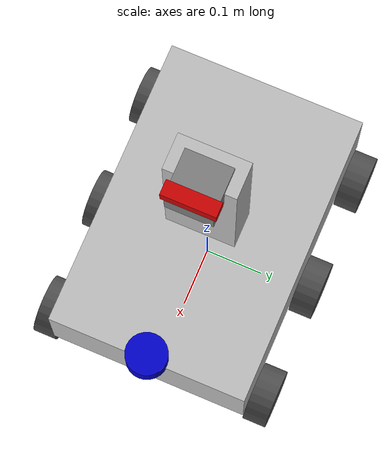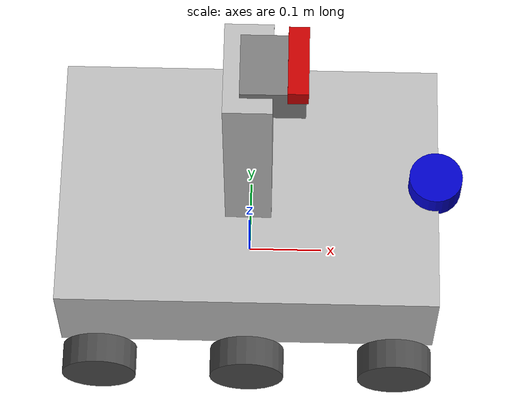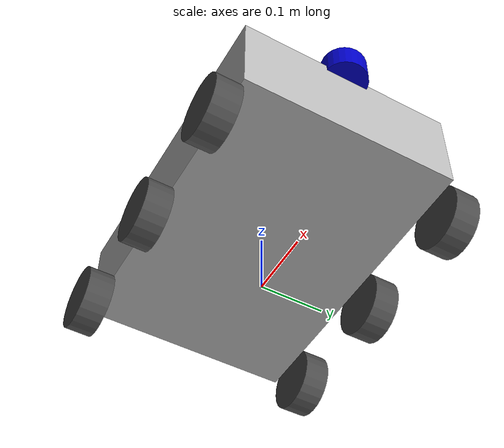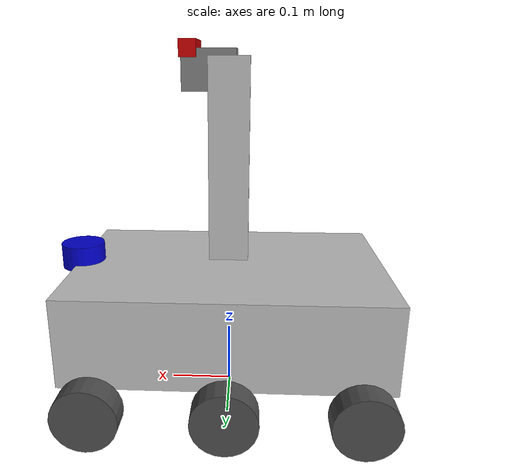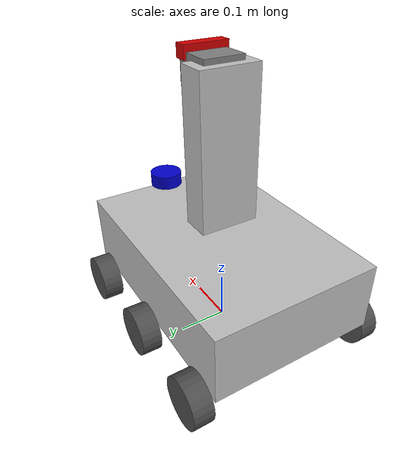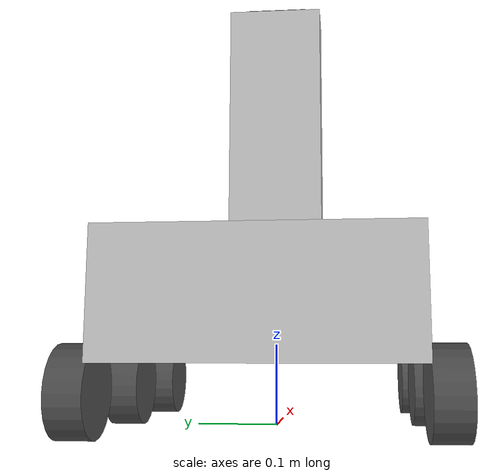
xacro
<?xml version="1.0"?>
<robot name="ugv" xmlns:xacro="http://www.ros.org/wiki/xacro">

  <xacro:arg name="prefix" default=""/>
  <xacro:property name="P" value="$(arg prefix)"/>

  <material name="black"><color rgba="0.1 0.1 0.1 1"/></material>
  <material name="dark_gray"><color rgba="0.3 0.3 0.3 1"/></material>
  <material name="gray"><color rgba="0.5 0.5 0.5 1"/></material>
  <material name="silver"><color rgba="0.75 0.75 0.75 1"/></material>
  <material name="blue"><color rgba="0.0 0.0 0.8 1"/></material>
  <material name="red"><color rgba="0.8 0.0 0.0 1"/></material>

  <link name="${P}base_footprint"/>

  <joint name="base_joint" type="fixed">
    <parent link="${P}base_footprint"/>
    <child link="${P}base_link"/>
    <origin xyz="0 0 0.15" rpy="0 0 0"/>
  </joint>

  <link name="${P}base_link">
    <visual>
      <geometry><box size="0.50 0.34 0.14"/></geometry>
      <material name="silver"/>
    </visual>
    <inertial>
      <mass value="5.0"/>
      <origin xyz="0 0 0"/>
      <inertia ixx="0.05" ixy="0" ixz="0" iyy="0.1" iyz="0" izz="0.15"/>
    </inertial>
  </link>

  <gazebo reference="${P}base_link">
    <kinematic>true</kinematic>
    <gravity>false</gravity>
  </gazebo>
  <gazebo reference="${P}turret_link">
    <gravity>false</gravity>
  </gazebo>
  <gazebo reference="${P}gun_link">
    <gravity>false</gravity>
  </gazebo>

  <!-- 매개변수 이름이 'side' 인 이유: 로봇 구분 접두사 P 와 헷갈리지 않게.
       예전엔 이 자리도 prefix 였다. -->
  <xacro:macro name="wheel" params="side x_reflect y_reflect">
    <link name="${P}${side}_wheel_link">
      <visual>
        <origin xyz="0 0 0" rpy="1.570796 0 0"/>
        <geometry><cylinder radius="0.05" length="0.04"/></geometry>
        <material name="dark_gray"/>
      </visual>
    </link>

    <joint name="${P}${side}_wheel_joint" type="fixed">
      <parent link="${P}base_link"/>
      <child link="${P}${side}_wheel_link"/>
      <origin xyz="${0.20 * x_reflect} ${0.19 * y_reflect} -0.10" rpy="0 0 0"/>
    </joint>
  </xacro:macro>

  <xacro:wheel side="front_left" x_reflect="1" y_reflect="1" />
  <xacro:wheel side="front_right" x_reflect="1" y_reflect="-1" />
  <xacro:wheel side="mid_left" x_reflect="0" y_reflect="1" />
  <xacro:wheel side="mid_right" x_reflect="0" y_reflect="-1" />
  <xacro:wheel side="rear_left" x_reflect="-1" y_reflect="1" />
  <xacro:wheel side="rear_right" x_reflect="-1" y_reflect="-1" />

  <link name="${P}laser_frame">
    <visual>
      <geometry><cylinder radius="0.035" length="0.04"/></geometry>
      <material name="blue"/>
    </visual>
  </link>
  <joint name="laser_joint" type="fixed">
    <parent link="${P}base_link"/>
    <child link="${P}laser_frame"/>
    <origin xyz="0.245 0.0 0.08" rpy="0 0 3.14159265"/>
  </joint>

  <link name="${P}turret_link">
    <visual>
      <geometry><box size="0.06 0.12 0.30"/></geometry>
      <material name="silver"/>
    </visual>
    <!-- collision 없음 — base_link 주석 참조 (기구학 구동이라 충격만 받음) -->
    <inertial>
      <mass value="1.0"/>
      <origin xyz="0 0 0"/>
      <inertia ixx="0.01" ixy="0" ixz="0" iyy="0.01" iyz="0" izz="0.01"/>
    </inertial>
  </link>
  <joint name="turret_yaw_joint" type="revolute">
    <parent link="${P}base_link"/>
    <child link="${P}turret_link"/>
    <origin xyz="0 0 0.245" rpy="0 0 0"/>
    <axis xyz="0 0 1"/>
    <limit lower="-6.2832" upper="6.2832" effort="100" velocity="1.0"/>
  </joint>

  <link name="${P}gun_link">
    <visual>
      <origin xyz="0.03 0 -0.02" rpy="0 0 0"/>
      <geometry><box size="0.08 0.08 0.06"/></geometry>
      <material name="gray"/>
    </visual>
    <!-- collision 없음 — base_link 주석 참조 -->
    <inertial>
      <mass value="0.2"/>
      <origin xyz="0 0 0"/>
      <inertia ixx="0.001" ixy="0" ixz="0" iyy="0.001" iyz="0" izz="0.001"/>
    </inertial>
  </link>
  <joint name="turret_pitch_joint" type="revolute">
    <parent link="${P}turret_link"/>
    <child link="${P}gun_link"/>
    <origin xyz="0 0 0.15" rpy="0 0 0"/>
    <axis xyz="0 1 0"/>
    <limit lower="-0.52" upper="0.52" effort="100" velocity="1.0"/>
  </joint>

  <link name="${P}camera_link">
    <visual>
      <geometry><box size="0.025 0.09 0.025"/></geometry>
      <material name="red"/>
    </visual>
  </link>
  <joint name="camera_joint" type="fixed">
    <parent link="${P}gun_link"/>
    <child link="${P}camera_link"/>
    <origin xyz="0.06 0.0 0.01" rpy="0 0 0"/>
  </joint>

  <gazebo>
    <plugin filename="gz-sim-joint-state-publisher-system" name="gz::sim::systems::JointStatePublisher">
      <topic>/${P}joint_states</topic>
    </plugin>

    <!-- cmd_vel 과 odom 은 상대 토픽으로 두면 모델 스코프가 아니라 루트로
         해석된다(실측). 접두사를 안 붙이면 두 로봇이 같은 /cmd_vel 을 받아
         나란히 움직인다. 반드시 명시한다. -->
    <plugin filename="gz-sim-velocity-control-system" name="gz::sim::systems::VelocityControl">
      <topic>/${P}cmd_vel</topic>
    </plugin>

    <plugin filename="gz-sim-odometry-publisher-system" name="gz::sim::systems::OdometryPublisher">
      <odom_frame>${P}odom</odom_frame>
      <robot_base_frame>${P}base_footprint</robot_base_frame>
      <odom_publish_frequency>50</odom_publish_frequency>
      <odom_topic>/${P}odom</odom_topic>
      <tf_topic>/model/${P}ugv/tf</tf_topic>
      <publish_tf>false</publish_tf>
    </plugin>

    <plugin filename="gz-sim-joint-controller-system" name="gz::sim::systems::JointController">
      <joint_name>turret_yaw_joint</joint_name>
      <use_velocity_commands>true</use_velocity_commands>
      <topic>/${P}turret_yaw_cmd</topic>
    </plugin>
    <plugin filename="gz-sim-joint-controller-system" name="gz::sim::systems::JointController">
      <joint_name>turret_pitch_joint</joint_name>
      <use_velocity_commands>true</use_velocity_commands>
      <topic>/${P}turret_pitch_cmd</topic>
    </plugin>
  </gazebo>

  <gazebo reference="${P}laser_frame">
    <sensor name="lidar" type="gpu_lidar">
      <pose>0 0 0 0 0 0</pose>
      <topic>/${P}scan</topic>
      <update_rate>10</update_rate>
      <gz_frame_id>${P}laser_frame</gz_frame_id>
      <ray>
        <scan>
          <horizontal>
            <samples>1080</samples>
            <resolution>1.000000</resolution>
            <min_angle>0.000000</min_angle>
            <max_angle>6.280000</max_angle>
          </horizontal>
        </scan>
        <range>
          <min>0.120000</min>
          <max>25.0</max>
          <resolution>0.015000</resolution>
        </range>
      </ray>
      <always_on>true</always_on>
      <visualize>true</visualize>
    </sensor>
  </gazebo>

  <gazebo reference="${P}camera_link">
    <sensor name="rgbd_camera" type="rgbd_camera">
      <pose>0 0 0 0 0 0</pose>
      <topic>/${P}camera</topic>
      <!-- 포인트클라우드를 Nav2 장애물 입력으로 쓰려면 frame_id 가 TF 에
           있는 이름이어야 한다. 없으면 스코프명(ugv/base_footprint/...)이
           나가고 코스트맵이 변환을 못 해 통째로 버린다.
           (열화상도 같은 이유로 이미 지정돼 있다) -->
      <gz_frame_id>${P}camera_link</gz_frame_id>
      <update_rate>15</update_rate>
      <camera>
        <horizontal_fov>1.089</horizontal_fov>
        <image>
          <width>640</width>
          <height>480</height>
          <format>R8G8B8</format>
        </image>
        <clip>
          <near>0.10</near>
          <far>8.0</far>
        </clip>
      </camera>
      <always_on>true</always_on>
      <visualize>false</visualize>
    </sensor>
  </gazebo>

  <gazebo reference="${P}camera_link">
    <sensor name="thermal_camera" type="thermal">
      <pose>0 0 0 0 0 0</pose>
      <topic>/${P}thermal/image_raw</topic>
      <update_rate>10</update_rate>
      <gz_frame_id>${P}camera_link</gz_frame_id>
      <camera>
        <horizontal_fov>1.089</horizontal_fov>
        <image>
          <width>640</width>
          <height>480</height>
          <format>L16</format>
        </image>
        <clip>
          <near>0.10</near>
          <far>12.0</far>
        </clip>
      </camera>
      <always_on>true</always_on>
      <visualize>false</visualize>
      <plugin filename="gz-sim-thermal-sensor-system"
              name="gz::sim::systems::ThermalSensor">
        <min_temp>253.15</min_temp>
        <max_temp>655.0</max_temp>        <!-- ~382°C (16bit×0.01 상한 655.35K) -->
        <resolution>0.01</resolution>     <!-- linear_resolution: 픽셀 1 = 0.01K -->
      </plugin>
    </sensor>
  </gazebo>
</robot>
